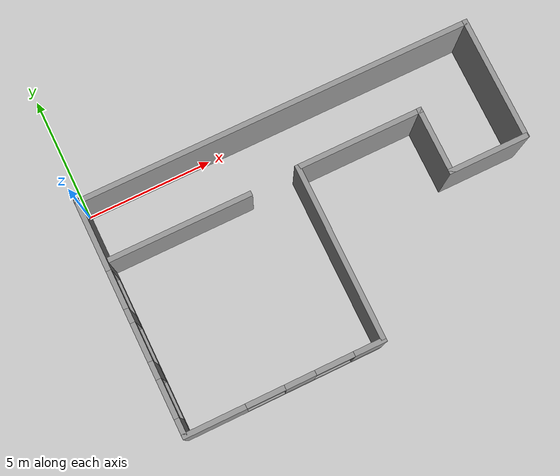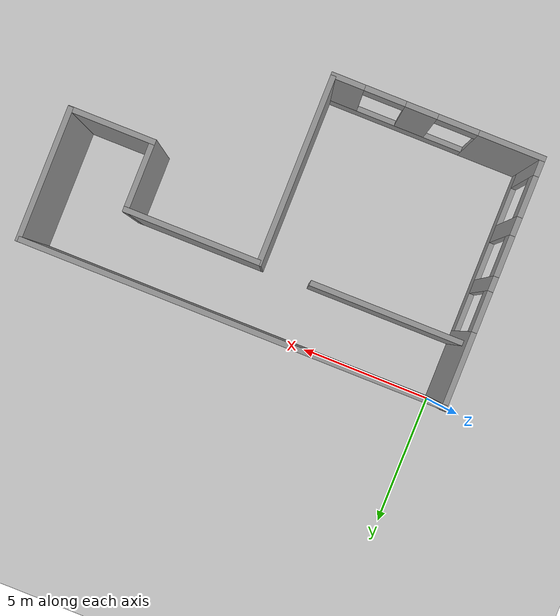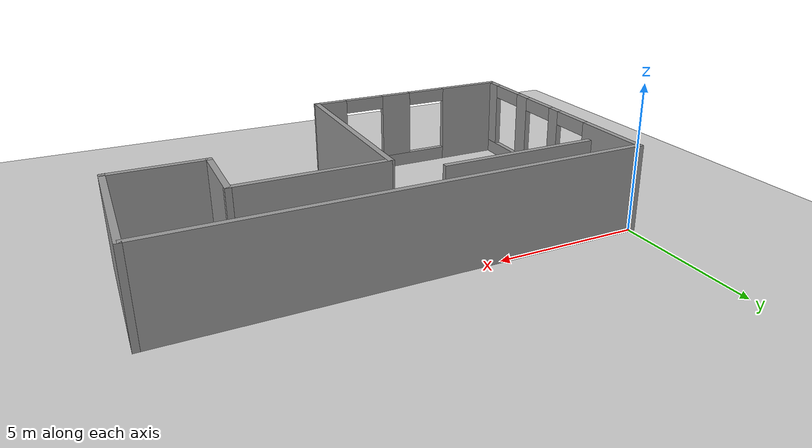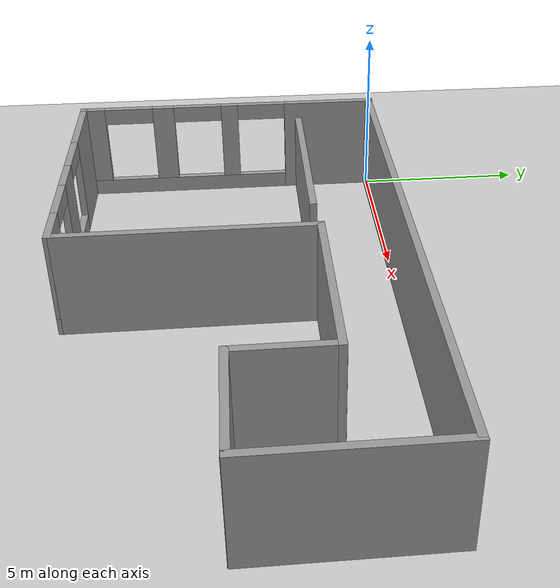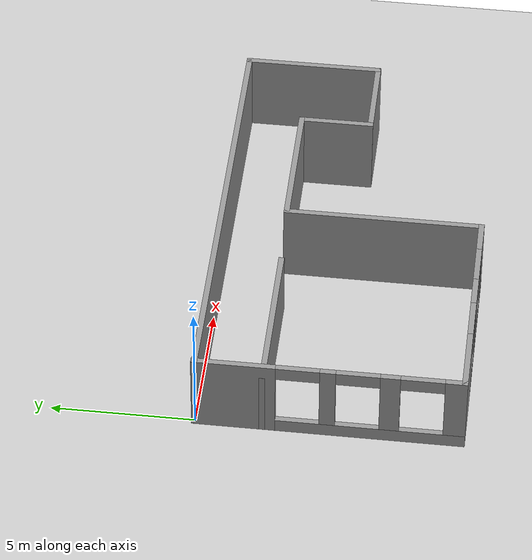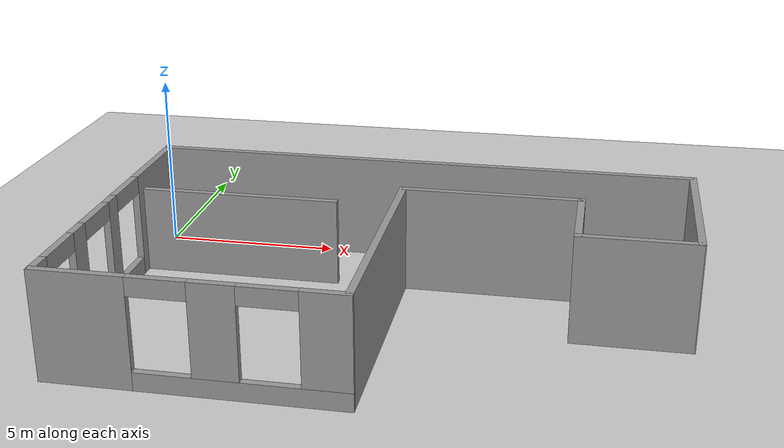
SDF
<sdf version="1.6">
 <world name="default">
  <light name="sun" type="directional">
   <pose>0 0 10 0 -0 0</pose>
   <diffuse>0.8 0.8 0.8 1</diffuse>
   <specular>0.2 0.2 0.2 1</specular>
   <attenuation>
    <range>1000</range>
    <constant>0.9</constant>
    <linear>0.01</linear>
    <quadratic>0.001</quadratic>
   </attenuation>
   <direction>-0.5 0.1 -0.9</direction>
  </light>
  <model name="ground_plane">
   <static>1</static>
   <link name="link">
    <collision name="collision">
     <geometry><plane><normal>0 0 1</normal><size>100 100</size></plane></geometry>
     <surface><friction><ode><mu>100</mu><mu2>50</mu2></ode></friction></surface>
    </collision>
    <visual name="visual">
     <cast_shadows>0</cast_shadows>
     <geometry><plane><normal>0 0 1</normal><size>100 100</size></plane></geometry>
     <material>
      <script><uri>file://media/materials/scripts/gazebo.material</uri><name>Gazebo/Grey</name></script>
     </material>
    </visual>
    <velocity_decay><linear>0</linear><angular>0</angular></velocity_decay>
   </link>
  </model>
  <physics name="default_physics" default="0" type="ode">
   <max_step_size>0.001</max_step_size>
   <real_time_factor>1</real_time_factor>
   <real_time_update_rate>1000</real_time_update_rate>
  </physics>
  <scene><ambient>0.4 0.4 0.4 1</ambient><background>0.7 0.7 0.7 1</background><shadows>1</shadows></scene>
  <spherical_coordinates>
   <surface_model>EARTH_WGS84</surface_model>
   <latitude_deg>0</latitude_deg>
   <longitude_deg>0</longitude_deg>
   <elevation>0</elevation>
   <heading_deg>0</heading_deg>
  </spherical_coordinates>
  <light name="sun_0" type="directional">
   <pose>3.4607 -3 10 0 -0 0</pose>
   <diffuse>0.8 0.8 0.8 1</diffuse>
   <specular>0.2 0.2 0.2 1</specular>
   <attenuation>
    <range>1000</range>
    <constant>0.9</constant>
    <linear>0.01</linear>
    <quadratic>0.001</quadratic>
   </attenuation>
   <direction>-0.5 0.1 -0.9</direction>
  </light>
  <model name="Altorfer_f1">
   <link name="Wall_0">
    <collision name="Wall_0_Collision">
     <geometry><box><size>15.7 0.2 3</size></box></geometry>
     <pose>0 0 1.5 0 -0 0</pose>
    </collision>
    <visual name="Wall_0_Visual">
     <pose>0 0 1.5 0 -0 0</pose>
     <geometry><box><size>15.7 0.2 3</size></box></geometry>
     <material>
      <script><uri>file://media/materials/scripts/gazebo.material</uri><name>Gazebo/Grey</name></script>
     </material>
    </visual>
    <velocity_decay><linear>0</linear><angular>0</angular></velocity_decay>
    <pose>7.715 0 0 0 -0 0</pose>
   </link>
   <link name="Wall_11">
    <collision name="Wall_11_Collision">
     <geometry><box><size>5.02 0.2 3</size></box></geometry>
     <pose>0 0 1.5 0 -0 0</pose>
    </collision>
    <visual name="Wall_11_Visual">
     <pose>0 0 1.5 0 -0 0</pose>
     <geometry><box><size>5.02 0.2 3</size></box></geometry>
     <material>
      <script><uri>file://media/materials/scripts/gazebo.material</uri><name>Gazebo/Grey</name></script>
     </material>
    </visual>
    <velocity_decay><linear>0</linear><angular>0</angular></velocity_decay>
    <pose>10.11 -2.264 0 0 -0 3.14159</pose>
   </link>
   <link name="Wall_13">
    <collision name="Wall_13_Collision">
     <geometry><box><size>6.95 0.2 3</size></box></geometry>
     <pose>0 0 1.5 0 -0 0</pose>
    </collision>
    <visual name="Wall_13_Visual">
     <pose>0 0 1.5 0 -0 0</pose>
     <geometry><box><size>6.95 0.2 3</size></box></geometry>
     <material>
      <script><uri>file://media/materials/scripts/gazebo.material</uri><name>Gazebo/Grey</name></script>
     </material>
    </visual>
    <velocity_decay><linear>0</linear><angular>0</angular></velocity_decay>
    <pose>7.631 -5.639 0 0 0 -1.5708</pose>
   </link>
   <link name="Wall_15">
    <pose>-0.038 -4.5505 0 0 0 -1.5708</pose>
    <visual name="Wall_15_Visual_0">
     <pose>-3.23935 0 1.5 0 -0 0</pose>
     <geometry><box><size>2.86777 0.2 3</size></box></geometry>
     <material>
      <script><uri>file://media/materials/scripts/gazebo.material</uri><name>Gazebo/Grey</name></script>
     </material>
    </visual>
    <collision name="Wall_15_Collision_0">
     <geometry><box><size>2.86777 0.2 3</size></box></geometry>
     <pose>-3.23935 0 1.5 0 -0 0</pose>
    </collision>
    <visual name="Wall_15_Visual_1">
     <pose>1.43389 0 0.25 0 -0 0</pose>
     <geometry><box><size>6.47871 0.2 0.5</size></box></geometry>
     <material>
      <script><uri>file://media/materials/scripts/gazebo.material</uri><name>Gazebo/Grey</name></script>
     </material>
    </visual>
    <collision name="Wall_15_Collision_1">
     <geometry><box><size>6.47871 0.2 0.5</size></box></geometry>
     <pose>1.43389 0 0.25 0 -0 0</pose>
    </collision>
    <visual name="Wall_15_Visual_2">
     <pose>-0.035282 0 1.75 0 -0 0</pose>
     <geometry><box><size>0.540368 0.2 2.5</size></box></geometry>
     <material>
      <script><uri>file://media/materials/scripts/gazebo.material</uri><name>Gazebo/Grey</name></script>
     </material>
    </visual>
    <collision name="Wall_15_Collision_2">
     <geometry><box><size>0.540368 0.2 2.5</size></box></geometry>
     <pose>-0.035282 0 1.75 0 -0 0</pose>
    </collision>
    <visual name="Wall_15_Visual_3">
     <pose>2.07544 0 1.75 0 -0 0</pose>
     <geometry><box><size>0.681083 0.2 2.5</size></box></geometry>
     <material>
      <script><uri>file://media/materials/scripts/gazebo.material</uri><name>Gazebo/Grey</name></script>
     </material>
    </visual>
    <collision name="Wall_15_Collision_3">
     <geometry><box><size>0.681083 0.2 2.5</size></box></geometry>
     <pose>2.07544 0 1.75 0 -0 0</pose>
    </collision>
    <visual name="Wall_15_Visual_4">
     <pose>4.29461 0 1.75 0 -0 0</pose>
     <geometry><box><size>0.757254 0.2 2.5</size></box></geometry>
     <material>
      <script><uri>file://media/materials/scripts/gazebo.material</uri><name>Gazebo/Grey</name></script>
     </material>
    </visual>
    <collision name="Wall_15_Collision_4">
     <geometry><box><size>0.757254 0.2 2.5</size></box></geometry>
     <pose>4.29461 0 1.75 0 -0 0</pose>
    </collision>
    <visual name="Wall_15_Visual_5">
     <pose>-1.05547 0 2.75 0 -0 0</pose>
     <geometry><box><size>1.5 0.2 0.5</size></box></geometry>
     <material>
      <script><uri>file://media/materials/scripts/gazebo.material</uri><name>Gazebo/Grey</name></script>
     </material>
    </visual>
    <collision name="Wall_15_Collision_5">
     <geometry><box><size>1.5 0.2 0.5</size></box></geometry>
     <pose>-1.05547 0 2.75 0 -0 0</pose>
    </collision>
    <visual name="Wall_15_Visual_6">
     <pose>0.984902 0 2.75 0 -0 0</pose>
     <geometry><box><size>1.5 0.2 0.5</size></box></geometry>
     <material>
      <script><uri>file://media/materials/scripts/gazebo.material</uri><name>Gazebo/Grey</name></script>
     </material>
    </visual>
    <collision name="Wall_15_Collision_6">
     <geometry><box><size>1.5 0.2 0.5</size></box></geometry>
     <pose>0.984902 0 2.75 0 -0 0</pose>
    </collision>
    <visual name="Wall_15_Visual_7">
     <pose>3.16599 0 2.75 0 -0 0</pose>
     <geometry><box><size>1.5 0.2 0.5</size></box></geometry>
     <material>
      <script><uri>file://media/materials/scripts/gazebo.material</uri><name>Gazebo/Grey</name></script>
     </material>
    </visual>
    <collision name="Wall_15_Collision_7">
     <geometry><box><size>1.5 0.2 0.5</size></box></geometry>
     <pose>3.16599 0 2.75 0 -0 0</pose>
    </collision>
    <velocity_decay><linear>0</linear><angular>0</angular></velocity_decay>
   </link>
   <link name="Wall_16">
    <pose>3.7965 -9.124 0 0 -0 0</pose>
    <visual name="Wall_16_Visual_0">
     <pose>-2.71184 0 1.5 0 -0 0</pose>
     <geometry><box><size>2.4453 0.2 3</size></box></geometry>
     <material>
      <script><uri>file://media/materials/scripts/gazebo.material</uri><name>Gazebo/Grey</name></script>
     </material>
    </visual>
    <collision name="Wall_16_Collision_0">
     <geometry><box><size>2.4453 0.2 3</size></box></geometry>
     <pose>-2.71184 0 1.5 0 -0 0</pose>
    </collision>
    <visual name="Wall_16_Visual_1">
     <pose>1.22265 0 0.25 0 -0 0</pose>
     <geometry><box><size>5.42367 0.2 0.5</size></box></geometry>
     <material>
      <script><uri>file://media/materials/scripts/gazebo.material</uri><name>Gazebo/Grey</name></script>
     </material>
    </visual>
    <collision name="Wall_16_Collision_1">
     <geometry><box><size>5.42367 0.2 0.5</size></box></geometry>
     <pose>1.22265 0 0.25 0 -0 0</pose>
    </collision>
    <visual name="Wall_16_Visual_2">
     <pose>0.597607 0 1.75 0 -0 0</pose>
     <geometry><box><size>1.17359 0.2 2.5</size></box></geometry>
     <material>
      <script><uri>file://media/materials/scripts/gazebo.material</uri><name>Gazebo/Grey</name></script>
     </material>
    </visual>
    <collision name="Wall_16_Collision_2">
     <geometry><box><size>1.17359 0.2 2.5</size></box></geometry>
     <pose>0.597607 0 1.75 0 -0 0</pose>
    </collision>
    <visual name="Wall_16_Visual_3">
     <pose>3.30944 0 1.75 0 -0 0</pose>
     <geometry><box><size>1.25008 0.2 2.5</size></box></geometry>
     <material>
      <script><uri>file://media/materials/scripts/gazebo.material</uri><name>Gazebo/Grey</name></script>
     </material>
    </visual>
    <collision name="Wall_16_Collision_3">
     <geometry><box><size>1.25008 0.2 2.5</size></box></geometry>
     <pose>3.30944 0 1.75 0 -0 0</pose>
    </collision>
    <visual name="Wall_16_Visual_4">
     <pose>-0.739186 0 2.75 0 -0 0</pose>
     <geometry><box><size>1.5 0.2 0.5</size></box></geometry>
     <material>
      <script><uri>file://media/materials/scripts/gazebo.material</uri><name>Gazebo/Grey</name></script>
     </material>
    </visual>
    <collision name="Wall_16_Collision_4">
     <geometry><box><size>1.5 0.2 0.5</size></box></geometry>
     <pose>-0.739186 0 2.75 0 -0 0</pose>
    </collision>
    <visual name="Wall_16_Visual_5">
     <pose>1.9344 0 2.75 0 -0 0</pose>
     <geometry><box><size>1.5 0.2 0.5</size></box></geometry>
     <material>
      <script><uri>file://media/materials/scripts/gazebo.material</uri><name>Gazebo/Grey</name></script>
     </material>
    </visual>
    <collision name="Wall_16_Collision_5">
     <geometry><box><size>1.5 0.2 0.5</size></box></geometry>
     <pose>1.9344 0 2.75 0 -0 0</pose>
    </collision>
    <velocity_decay><linear>0</linear><angular>0</angular></velocity_decay>
   </link>
   <link name="Wall_18">
    <collision name="Wall_18_Collision">
     <geometry><box><size>5.89896 0.2 2.5</size></box></geometry>
     <pose>0 0 1.25 0 -0 0</pose>
    </collision>
    <visual name="Wall_18_Visual">
     <pose>0 0 1.25 0 -0 0</pose>
     <geometry><box><size>5.89896 0.2 2.5</size></box></geometry>
     <material>
      <script><uri>file://media/materials/scripts/gazebo.material</uri><name>Gazebo/Grey</name></script>
     </material>
    </visual>
    <velocity_decay><linear>0</linear><angular>0</angular></velocity_decay>
    <pose>2.81106 -2.29895 0 0 -0 3.14159</pose>
   </link>
   <link name="Wall_5">
    <collision name="Wall_5_Collision">
     <geometry><box><size>4.95 0.2 3</size></box></geometry>
     <pose>0 0 1.5 0 -0 0</pose>
    </collision>
    <visual name="Wall_5_Visual">
     <pose>0 0 1.5 0 -0 0</pose>
     <geometry><box><size>4.95 0.2 3</size></box></geometry>
     <material>
      <script><uri>file://media/materials/scripts/gazebo.material</uri><name>Gazebo/Grey</name></script>
     </material>
    </visual>
    <velocity_decay><linear>0</linear><angular>0</angular></velocity_decay>
    <pose>15.549 -2.374 0 0 -0 1.5708</pose>
   </link>
   <link name="Wall_7">
    <collision name="Wall_7_Collision">
     <geometry><box><size>3.2 0.2 3</size></box></geometry>
     <pose>0 0 1.5 0 -0 0</pose>
    </collision>
    <visual name="Wall_7_Visual">
     <pose>0 0 1.5 0 -0 0</pose>
     <geometry><box><size>3.2 0.2 3</size></box></geometry>
     <material>
      <script><uri>file://media/materials/scripts/gazebo.material</uri><name>Gazebo/Grey</name></script>
     </material>
    </visual>
    <velocity_decay><linear>0</linear><angular>0</angular></velocity_decay>
    <pose>14.021 -4.762 0 0 -0 0</pose>
   </link>
   <link name="Wall_9">
    <collision name="Wall_9_Collision">
     <geometry><box><size>2.7 0.2 3</size></box></geometry>
     <pose>0 0 1.5 0 -0 0</pose>
    </collision>
    <visual name="Wall_9_Visual">
     <pose>0 0 1.5 0 -0 0</pose>
     <geometry><box><size>2.7 0.2 3</size></box></geometry>
     <material>
      <script><uri>file://media/materials/scripts/gazebo.material</uri><name>Gazebo/Grey</name></script>
     </material>
    </visual>
    <velocity_decay><linear>0</linear><angular>0</angular></velocity_decay>
    <pose>12.52 -3.511 0 0 -0 1.5708</pose>
   </link>
   <static>1</static>
  </model>
  <gravity>0 0 -9.8</gravity>
  <magnetic_field>6e-06 2.3e-05 -4.2e-05</magnetic_field>
  <atmosphere type="adiabatic"/>
  <audio><device>default</device></audio>
 </world>
</sdf>
